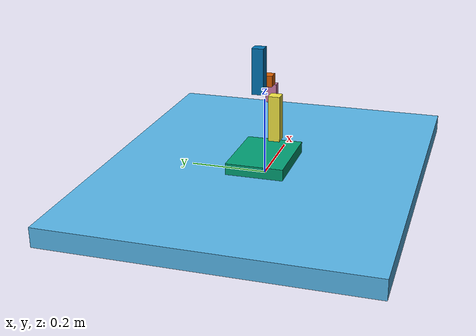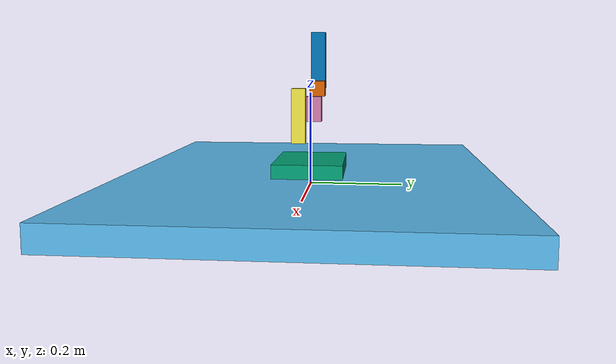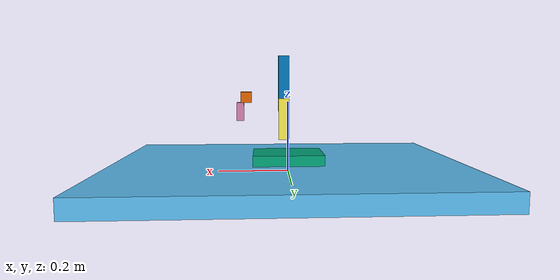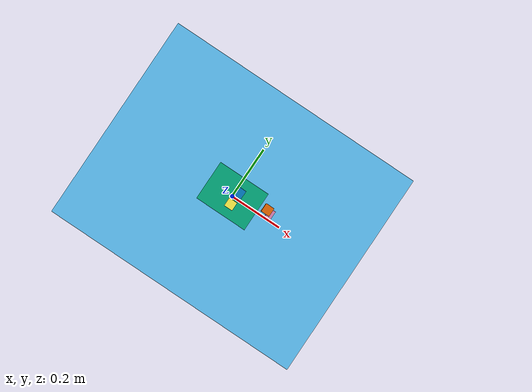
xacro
<?xml version="1.0"?>
<!-- 最小复现：v_skel + 1 个 revolute effort 测试关节 -->
<robot name="ep_f1">
  <link name="world"/>
  <link name="table_link">
    <inertial><mass value="10"/><inertia ixx="1" ixy="0" ixz="0" iyy="1" iyz="0" izz="1"/></inertial>
    <visual><geometry><box size="1.0 0.8 0.05"/></geometry></visual>
    <collision><geometry><box size="1.0 0.8 0.05"/></geometry></collision>
  </link>
  <joint name="table_joint" type="fixed">
    <parent link="world"/><child link="table_link"/><origin xyz="0 0 0" rpy="0 0 0"/>
  </joint>
  <joint name="chassis_yaw_joint" type="revolute">
    <parent link="table_link"/><child link="base_link"/>
    <origin xyz="0 0 0.025" rpy="0 0 0"/><axis xyz="0 0 1"/>
    <limit effort="4" velocity="3.14" lower="-6.2832" upper="6.2832"/>
  </joint>
  <link name="base_link">
    <inertial><mass value="1.0"/><inertia ixx="0.01" ixy="0" ixz="0" iyy="0.01" iyz="0" izz="0.01"/></inertial>
    <visual><geometry><box size="0.2 0.15 0.06"/></geometry></visual>
    <collision><geometry><box size="0.2 0.15 0.06"/></geometry></collision>
  </link>
  <joint name="arm_1_joint" type="revolute">
    <origin xyz="0.0103961 -0.0255713 0.125389" rpy="0 0 0"/>
    <parent link="base_link"/><child link="arm_1_link"/>
    <axis xyz="0 1 0"/><limit effort="6" velocity="3" lower="-0.274" upper="1.384"/>
  </joint>
  <link name="arm_1_link">
    <inertial><mass value="0.056"/><inertia ixx="0.0156113" ixy="0" ixz="0" iyy="0.0161553" iyz="0" izz="0.0018092"/></inertial>
    <visual><geometry><box size="0.03 0.03 0.12"/></geometry></visual>
    <collision><geometry><box size="0.03 0.03 0.12"/></geometry></collision>
  </link>
  <joint name="arm_2_joint" type="revolute">
    <origin xyz="0.0018704 0.0438659 0.1210238" rpy="0 0 0"/>
    <parent link="arm_1_link"/><child link="arm_2_link"/>
    <axis xyz="0 1 0"/><limit effort="6" velocity="3" lower="-1.25" upper="0.40"/>
  </joint>
  <link name="arm_2_link">
    <inertial><mass value="0.08"/><inertia ixx="0.0118624" ixy="0" ixz="0" iyy="0.0041691" iyz="0" izz="0.0101456"/></inertial>
    <visual><geometry><box size="0.03 0.03 0.12"/></geometry></visual>
    <collision><geometry><box size="0.03 0.03 0.12"/></geometry></collision>
  </link>
  <joint name="endpoint_bracket_joint" type="revolute">
    <origin xyz="0.1058557 0.006752 -0.0561093" rpy="0 0 0"/>
    <parent link="arm_2_link"/><child link="endpoint_bracket_link"/>
    <axis xyz="0 1 0"/><limit effort="6" velocity="3" lower="-3.14" upper="3.14"/>
  </joint>
  <link name="endpoint_bracket_link">
    <inertial><mass value="0.028"/><inertia ixx="0.0004413" ixy="0" ixz="0" iyy="0.0008301" iyz="0" izz="0.0008237"/></inertial>
    <visual><geometry><box size="0.03 0.03 0.03"/></geometry></visual>
    <collision><geometry><box size="0.03 0.03 0.03"/></geometry></collision>
  </link>
  <!-- 被测： 固定关节链下的 revolute+effort -->
  <joint name="gripper_left_joint" type="revolute">
    <origin xyz="0.0165825 -0.0058228 -0.0397386" rpy="0 0 0"/>
    <parent link="endpoint_bracket_link"/><child link="finger_box"/>
    <axis xyz="0 0 1"/>
    <limit effort="1.2" velocity="2" lower="-0.32" upper="0.45"/>
    <dynamics damping="0.05"/>
  </joint>
  <link name="finger_box">
    <inertial><mass value="0.011"/><inertia ixx="0.006" ixy="0" ixz="0" iyy="0.006" iyz="0" izz="0.006"/></inertial>
    <visual><geometry><box size="0.02 0.03 0.05"/></geometry></visual>
    <collision><geometry><box size="0.02 0.03 0.05"/></geometry></collision>
  </link>
  <gazebo>
    <plugin filename="libgazebo_ros2_control.so" name="gazebo_ros2_control">
      <ros><node_name>arm_gazebo_ros2_control</node_name></ros>
      <robot_param>robot_description</robot_param>
      <robot_param_node>robot_state_publisher</robot_param_node>
      <parameters>/home/underwater/arm_grasp_ws/src/arm_grasp_sim/config/controllers.yaml</parameters>
    </plugin>
  </gazebo>
  <ros2_control name="ep_f1_system" type="system">
    <hardware><plugin>gazebo_ros2_control/GazeboSystem</plugin></hardware>
    <joint name="chassis_yaw_joint"><command_interface name="velocity"/><state_interface name="position"/><state_interface name="velocity"/></joint>
    <joint name="arm_1_joint"><command_interface name="velocity"/><state_interface name="position"/><state_interface name="velocity"/></joint>
    <joint name="arm_2_joint"><command_interface name="velocity"/><state_interface name="position"/><state_interface name="velocity"/></joint>
    <joint name="endpoint_bracket_joint"><command_interface name="velocity"/><state_interface name="position"/><state_interface name="velocity"/></joint>
    <joint name="gripper_left_joint"><command_interface name="velocity"/><state_interface name="position"/><state_interface name="velocity"/></joint>
  </ros2_control>
</robot>
